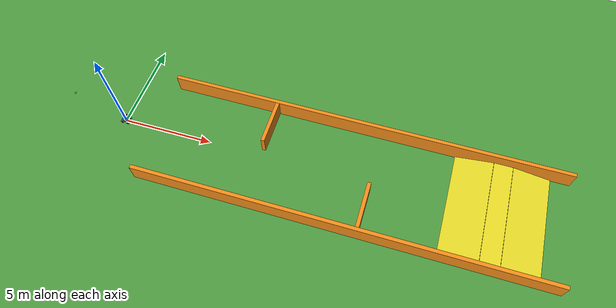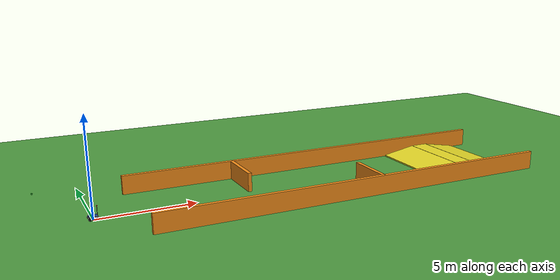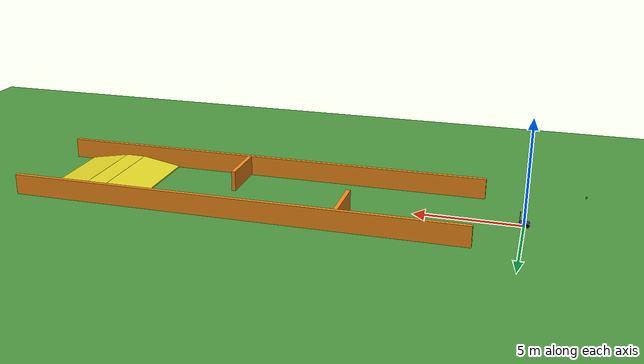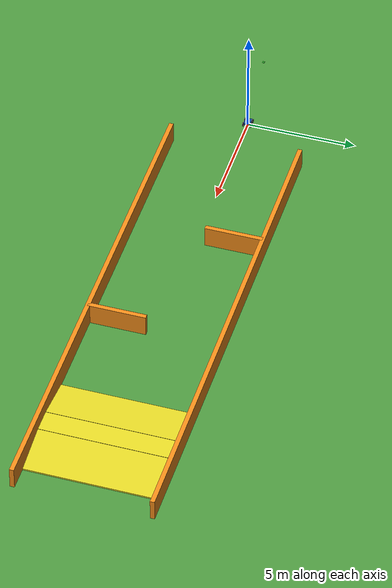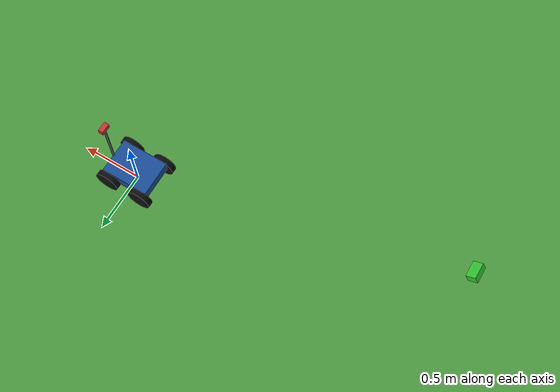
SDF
<?xml version="1.0" ?>
<sdf version="1.6">
  <world name="default">
    <scene>
      <ambient>0.7 0.7 0.7 1</ambient>
      <background>0.7 0.8 0.9 1</background>
      <shadows>true</shadows>
    </scene>
    <gui>
      <camera name="user_camera">
        <pose>-5 0 3 0 0.3 0</pose>
      </camera>
    </gui>
    <physics type="ode">
      <ode>
        <solver>
          <type>quick</type>
          <iters>100</iters>
          <sor>1.0</sor>
        </solver>
        <constraints>
          <cfm>0.0</cfm>
          <erp>0.2</erp>
          <contact_max_correcting_vel>100.0</contact_max_correcting_vel>
          <contact_surface_layer>0.001</contact_surface_layer>
        </constraints>
      </ode>
      <real_time_update_rate>1000</real_time_update_rate>
    </physics>
    <gravity>0 0 -9.8</gravity>
    <include>
      <uri>model://sun</uri>
    </include>

    <model name="ground_plane">
      <static>true</static>
      <link name="link">
        <collision name="collision">
          <geometry>
            <plane>
              <normal>0 0 1</normal>
              <size>100 100</size>
            </plane>
          </geometry>
          <surface>
            <contact>
              <collide_bitmask>0xffff</collide_bitmask>
            </contact>
            <friction>
              <ode>
                <mu>100</mu>
                <mu2>50</mu2>
              </ode>
            </friction>
          </surface>
        </collision>
        <visual name="visual">
          <cast_shadows>false</cast_shadows>
          <geometry>
            <plane>
              <normal>0 0 1</normal>
              <size>100 100</size>
            </plane>
          </geometry>
          <material>
            <script>
              <uri>file://media/materials/scripts/gazebo.material</uri>
              <name>Gazebo/Grass</name>
            </script>
          </material>
        </visual>
      </link>
    </model>

    <model name="generic_rover_demo">
      <include>
        <uri>model://generic_rover</uri>
      </include>
    </model>

    <include>
      <uri>model://obstacle_course</uri>
    </include>

  </world>
</sdf>

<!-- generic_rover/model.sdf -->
<sdf version="1.6">
  <model name="generic_rover">

    <link name="base_link">
      <pose>0 0 0.150000 0 0 0</pose>
      <inertial>
        <mass>5.0</mass>
        <inertia>
          <ixx>0.041667</ixx>
          <ixy>0</ixy>
          <ixz>0</ixz>
          <iyy>0.070833</iyy>
          <iyz>0</iyz>
          <izz>0.104167</izz>
        </inertia>
      </inertial>
      <collision name="base_collision">
        <geometry>
          <box>
            <size>0.4 0.3 0.1</size>
          </box>
        </geometry>
      </collision>
      <visual name="base_visual">
        <geometry>
          <box>
            <size>0.4 0.3 0.1</size>
          </box>
        </geometry>
        <material>
          <ambient>0.1 0.3 0.6 1</ambient>
          <diffuse>0.1 0.3 0.6 1</diffuse>
        </material>
      </visual>
      <!-- Camera mast (visual only) up to the camera_link offset. -->
      <visual name="camera_mast_visual">
        <pose>0.200000 0 0.275000 0 0 0</pose>
        <geometry>
          <cylinder>
            <radius>0.01</radius>
            <length>0.450000</length>
          </cylinder>
        </geometry>
        <material>
          <ambient>0.3 0.3 0.3 1</ambient>
          <diffuse>0.3 0.3 0.3 1</diffuse>
        </material>
      </visual>
    </link>

    <link name="front_left_wheel">
      <pose>0.150000 0.170000 0.100000 -1.5707963 0 0</pose>
      <inertial>
        <mass>0.5</mass>
        <inertia>
          <ixx>0.00135</ixx>
          <ixy>0</ixy>
          <ixz>0</ixz>
          <iyy>0.00135</iyy>
          <iyz>0</iyz>
          <izz>0.0025</izz>
        </inertia>
      </inertial>
      <collision name="front_left_wheel_collision">
        <geometry>
          <cylinder>
            <radius>0.100000</radius>
            <length>0.050000</length>
          </cylinder>
        </geometry>
        <surface>
          <friction>
            <ode>
              <mu>1.5</mu>
              <mu2>0.2</mu2>
              <fdir1>1 0 0</fdir1>
            </ode>
          </friction>
        </surface>
      </collision>
      <visual name="front_left_wheel_visual">
        <geometry>
          <cylinder>
            <radius>0.100000</radius>
            <length>0.050000</length>
          </cylinder>
        </geometry>
        <material>
          <ambient>0.05 0.05 0.05 1</ambient>
          <diffuse>0.05 0.05 0.05 1</diffuse>
        </material>
      </visual>
    </link>

    <link name="front_right_wheel">
      <pose>0.150000 -0.170000 0.100000 -1.5707963 0 0</pose>
      <inertial>
        <mass>0.5</mass>
        <inertia>
          <ixx>0.00135</ixx>
          <ixy>0</ixy>
          <ixz>0</ixz>
          <iyy>0.00135</iyy>
          <iyz>0</iyz>
          <izz>0.0025</izz>
        </inertia>
      </inertial>
      <collision name="front_right_wheel_collision">
        <geometry>
          <cylinder>
            <radius>0.100000</radius>
            <length>0.050000</length>
          </cylinder>
        </geometry>
        <surface>
          <friction>
            <ode>
              <mu>1.5</mu>
              <mu2>0.2</mu2>
              <fdir1>1 0 0</fdir1>
            </ode>
          </friction>
        </surface>
      </collision>
      <visual name="front_right_wheel_visual">
        <geometry>
          <cylinder>
            <radius>0.100000</radius>
            <length>0.050000</length>
          </cylinder>
        </geometry>
        <material>
          <ambient>0.05 0.05 0.05 1</ambient>
          <diffuse>0.05 0.05 0.05 1</diffuse>
        </material>
      </visual>
    </link>

    <link name="rear_left_wheel">
      <pose>-0.150000 0.170000 0.100000 -1.5707963 0 0</pose>
      <inertial>
        <mass>0.5</mass>
        <inertia>
          <ixx>0.00135</ixx>
          <ixy>0</ixy>
          <ixz>0</ixz>
          <iyy>0.00135</iyy>
          <iyz>0</iyz>
          <izz>0.0025</izz>
        </inertia>
      </inertial>
      <collision name="rear_left_wheel_collision">
        <geometry>
          <cylinder>
            <radius>0.100000</radius>
            <length>0.050000</length>
          </cylinder>
        </geometry>
        <surface>
          <friction>
            <ode>
              <mu>1.5</mu>
              <mu2>0.2</mu2>
              <fdir1>1 0 0</fdir1>
            </ode>
          </friction>
        </surface>
      </collision>
      <visual name="rear_left_wheel_visual">
        <geometry>
          <cylinder>
            <radius>0.100000</radius>
            <length>0.050000</length>
          </cylinder>
        </geometry>
        <material>
          <ambient>0.05 0.05 0.05 1</ambient>
          <diffuse>0.05 0.05 0.05 1</diffuse>
        </material>
      </visual>
    </link>

    <link name="rear_right_wheel">
      <pose>-0.150000 -0.170000 0.100000 -1.5707963 0 0</pose>
      <inertial>
        <mass>0.5</mass>
        <inertia>
          <ixx>0.00135</ixx>
          <ixy>0</ixy>
          <ixz>0</ixz>
          <iyy>0.00135</iyy>
          <iyz>0</iyz>
          <izz>0.0025</izz>
        </inertia>
      </inertial>
      <collision name="rear_right_wheel_collision">
        <geometry>
          <cylinder>
            <radius>0.100000</radius>
            <length>0.050000</length>
          </cylinder>
        </geometry>
        <surface>
          <friction>
            <ode>
              <mu>1.5</mu>
              <mu2>0.2</mu2>
              <fdir1>1 0 0</fdir1>
            </ode>
          </friction>
        </surface>
      </collision>
      <visual name="rear_right_wheel_visual">
        <geometry>
          <cylinder>
            <radius>0.100000</radius>
            <length>0.050000</length>
          </cylinder>
        </geometry>
        <material>
          <ambient>0.05 0.05 0.05 1</ambient>
          <diffuse>0.05 0.05 0.05 1</diffuse>
        </material>
      </visual>
    </link>

    <joint name="front_left_wheel_joint" type="revolute">
      <parent>base_link</parent>
      <child>front_left_wheel</child>
      <axis>
        <xyz>0 1 0</xyz>
        <use_parent_model_frame>true</use_parent_model_frame>
      </axis>
    </joint>

    <joint name="front_right_wheel_joint" type="revolute">
      <parent>base_link</parent>
      <child>front_right_wheel</child>
      <axis>
        <xyz>0 1 0</xyz>
        <use_parent_model_frame>true</use_parent_model_frame>
      </axis>
    </joint>

    <joint name="rear_left_wheel_joint" type="revolute">
      <parent>base_link</parent>
      <child>rear_left_wheel</child>
      <axis>
        <xyz>0 1 0</xyz>
        <use_parent_model_frame>true</use_parent_model_frame>
      </axis>
    </joint>

    <joint name="rear_right_wheel_joint" type="revolute">
      <parent>base_link</parent>
      <child>rear_right_wheel</child>
      <axis>
        <xyz>0 1 0</xyz>
        <use_parent_model_frame>true</use_parent_model_frame>
      </axis>
    </joint>

    <link name="camera_link">
      <pose>0.200000 0 0.650000 0 0 0</pose>
      <inertial>
        <mass>0.05</mass>
        <inertia>
          <ixx>0.00001</ixx>
          <ixy>0</ixy>
          <ixz>0</ixz>
          <iyy>0.00001</iyy>
          <iyz>0</iyz>
          <izz>0.00001</izz>
        </inertia>
      </inertial>
      <visual name="camera_visual">
        <geometry>
          <box>
            <size>0.04 0.08 0.04</size>
          </box>
        </geometry>
        <material>
          <ambient>0.8 0.2 0.2 1</ambient>
          <diffuse>0.8 0.2 0.2 1</diffuse>
        </material>
      </visual>
      <sensor type="depth" name="rover_camera_sensor">
        <update_rate>15.0</update_rate>
        <always_on>true</always_on>
        <visualize>false</visualize>
        <camera name="rover_camera">
          <horizontal_fov>1.7453293</horizontal_fov>
          <image>
            <width>640</width>
            <height>480</height>
            <format>R8G8B8</format>
          </image>
          <clip>
            <near>0.05</near>
            <far>100.0</far>
          </clip>
        </camera>
        <plugin name="camera_controller" filename="libgazebo_ros_openni_kinect.so">
          <baseline>0.2</baseline>
          <alwaysOn>true</alwaysOn>
          <updateRate>15.0</updateRate>
          <cameraName>rover/camera</cameraName>
          <imageTopicName>image_raw</imageTopicName>
          <cameraInfoTopicName>camera_info</cameraInfoTopicName>
          <depthImageTopicName>depth/image_raw</depthImageTopicName>
          <depthImageInfoTopicName>depth/camera_info</depthImageInfoTopicName>
          <pointCloudTopicName>depth/points</pointCloudTopicName>
          <frameName>camera_link</frameName>
          <pointCloudCutoff>0.05</pointCloudCutoff>
          <pointCloudCutoffMax>100.0</pointCloudCutoffMax>
          <distortionK1>0</distortionK1>
          <distortionK2>0</distortionK2>
          <distortionK3>0</distortionK3>
          <distortionT1>0</distortionT1>
          <distortionT2>0</distortionT2>
          <CxPrime>0</CxPrime>
          <Cx>0</Cx>
          <Cy>0</Cy>
          <focalLength>0</focalLength>
          <hackBaseline>0</hackBaseline>
        </plugin>
      </sensor>
    </link>

    <joint name="camera_joint" type="fixed">
      <parent>base_link</parent>
      <child>camera_link</child>
    </joint>

    <link name="camera_link_chase">
      <pose>-2.5 0 1.65 0 0.5833730 0</pose>
      <inertial>
        <mass>0.05</mass>
        <inertia>
          <ixx>0.00001</ixx>
          <ixy>0</ixy>
          <ixz>0</ixz>
          <iyy>0.00001</iyy>
          <iyz>0</iyz>
          <izz>0.00001</izz>
        </inertia>
      </inertial>
      <visual name="camera_chase_visual">
        <geometry>
          <box>
            <size>0.06 0.1 0.05</size>
          </box>
        </geometry>
        <material>
          <ambient>0.2 0.8 0.2 1</ambient>
          <diffuse>0.2 0.8 0.2 1</diffuse>
        </material>
      </visual>
      <sensor type="depth" name="rover_camera_chase_sensor">
        <update_rate>15.0</update_rate>
        <always_on>true</always_on>
        <visualize>false</visualize>
        <camera name="rover_camera_chase">
          <horizontal_fov>1.7453293</horizontal_fov>
          <image>
            <width>640</width>
            <height>480</height>
            <format>R8G8B8</format>
          </image>
          <clip>
            <near>0.05</near>
            <far>100.0</far>
          </clip>
        </camera>
        <plugin name="camera_chase_controller" filename="libgazebo_ros_openni_kinect.so">
          <baseline>0.2</baseline>
          <alwaysOn>true</alwaysOn>
          <updateRate>15.0</updateRate>
          <cameraName>rover/camera_chase</cameraName>
          <imageTopicName>image_raw</imageTopicName>
          <cameraInfoTopicName>camera_info</cameraInfoTopicName>
          <depthImageTopicName>depth/image_raw</depthImageTopicName>
          <depthImageInfoTopicName>depth/camera_info</depthImageInfoTopicName>
          <pointCloudTopicName>depth/points</pointCloudTopicName>
          <frameName>camera_link_chase</frameName>
          <pointCloudCutoff>0.05</pointCloudCutoff>
          <pointCloudCutoffMax>100.0</pointCloudCutoffMax>
          <distortionK1>0</distortionK1>
          <distortionK2>0</distortionK2>
          <distortionK3>0</distortionK3>
          <distortionT1>0</distortionT1>
          <distortionT2>0</distortionT2>
          <CxPrime>0</CxPrime>
          <Cx>0</Cx>
          <Cy>0</Cy>
          <focalLength>0</focalLength>
          <hackBaseline>0</hackBaseline>
        </plugin>
      </sensor>
    </link>

    <joint name="camera_joint_chase" type="fixed">
      <parent>base_link</parent>
      <child>camera_link_chase</child>
    </joint>

    <plugin name="diff_drive_controller" filename="libgazebo_ros_diff_drive.so">
      <robotNamespace>/rover</robotNamespace>
      <commandTopic>cmd_vel</commandTopic>
      <odometryTopic>odom</odometryTopic>
      <odometryFrame>odom</odometryFrame>
      <odometrySource>world</odometrySource>
      <robotBaseFrame>base_link</robotBaseFrame>
      <leftJoint>front_left_wheel_joint</leftJoint>
      <leftJoint>rear_left_wheel_joint</leftJoint>
      <rightJoint>front_right_wheel_joint</rightJoint>
      <rightJoint>rear_right_wheel_joint</rightJoint>
      <wheelSeparation>0.340000</wheelSeparation>
      <wheelDiameter>0.200000</wheelDiameter>
      <wheelTorque>25.0</wheelTorque>
      <wheelAcceleration>3.0</wheelAcceleration>
      <updateRate>30.0</updateRate>
      <publishOdomTF>true</publishOdomTF>
      <publishWheelTF>false</publishWheelTF>
      <publishWheelJointState>false</publishWheelJointState>
      <legacyMode>false</legacyMode>
    </plugin>

  </model>
</sdf>

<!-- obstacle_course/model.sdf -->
<sdf version="1.6">
  <model name="obstacle_course">
    <static>true</static>

    <link name="left_wall">
      <pose>13.000000 3.000000 0.500000 0 0 0</pose>
      <collision name="collision">
        <geometry>
          <box><size>22.000000 0.200000 1.000000</size></box>
        </geometry>
      </collision>
      <visual name="visual">
        <geometry>
          <box><size>22.000000 0.200000 1.000000</size></box>
        </geometry>
        <material>
          <script>
            <uri>file://media/materials/scripts/gazebo.material</uri>
            <name>Gazebo/Orange</name>
          </script>
        </material>
      </visual>
    </link>

    <link name="right_wall">
      <pose>13.000000 -3.000000 0.500000 0 0 0</pose>
      <collision name="collision">
        <geometry>
          <box><size>22.000000 0.200000 1.000000</size></box>
        </geometry>
      </collision>
      <visual name="visual">
        <geometry>
          <box><size>22.000000 0.200000 1.000000</size></box>
        </geometry>
        <material>
          <script>
            <uri>file://media/materials/scripts/gazebo.material</uri>
            <name>Gazebo/Orange</name>
          </script>
        </material>
      </visual>
    </link>

    <link name="baffle_a">
      <pose>8.000000 1.700000 0.500000 0 0 0</pose>
      <collision name="collision">
        <geometry>
          <box><size>0.200000 2.600000 1.000000</size></box>
        </geometry>
      </collision>
      <visual name="visual">
        <geometry>
          <box><size>0.200000 2.600000 1.000000</size></box>
        </geometry>
        <material>
          <script>
            <uri>file://media/materials/scripts/gazebo.material</uri>
            <name>Gazebo/Orange</name>
          </script>
        </material>
      </visual>
    </link>

    <link name="baffle_b">
      <pose>14.000000 -1.700000 0.500000 0 0 0</pose>
      <collision name="collision">
        <geometry>
          <box><size>0.200000 2.600000 1.000000</size></box>
        </geometry>
      </collision>
      <visual name="visual">
        <geometry>
          <box><size>0.200000 2.600000 1.000000</size></box>
        </geometry>
        <material>
          <script>
            <uri>file://media/materials/scripts/gazebo.material</uri>
            <name>Gazebo/Orange</name>
          </script>
        </material>
      </visual>
    </link>

    <link name="ramp_up">
      <pose>18.995522 0 0.175000 0 -0.174009 0</pose>
      <collision name="collision">
        <geometry>
          <box><size>2.021573 6.000000 0.12</size></box>
        </geometry>
      </collision>
      <visual name="visual">
        <geometry>
          <box><size>2.021573 6.000000 0.12</size></box>
        </geometry>
        <material>
          <script>
            <uri>file://media/materials/scripts/gazebo.material</uri>
            <name>Gazebo/Yellow</name>
          </script>
        </material>
      </visual>
    </link>

    <link name="ramp_plateau">
      <pose>20.491044 0 0.350000 0 0 0</pose>
      <collision name="collision">
        <geometry>
          <box><size>1.000000 6.000000 0.12</size></box>
        </geometry>
      </collision>
      <visual name="visual">
        <geometry>
          <box><size>1.000000 6.000000 0.12</size></box>
        </geometry>
        <material>
          <script>
            <uri>file://media/materials/scripts/gazebo.material</uri>
            <name>Gazebo/Yellow</name>
          </script>
        </material>
      </visual>
    </link>

    <link name="ramp_down">
      <pose>21.986566 0 0.175000 0 0.174009 0</pose>
      <collision name="collision">
        <geometry>
          <box><size>2.021573 6.000000 0.12</size></box>
        </geometry>
      </collision>
      <visual name="visual">
        <geometry>
          <box><size>2.021573 6.000000 0.12</size></box>
        </geometry>
        <material>
          <script>
            <uri>file://media/materials/scripts/gazebo.material</uri>
            <name>Gazebo/Yellow</name>
          </script>
        </material>
      </visual>
    </link>

  </model>
</sdf>
